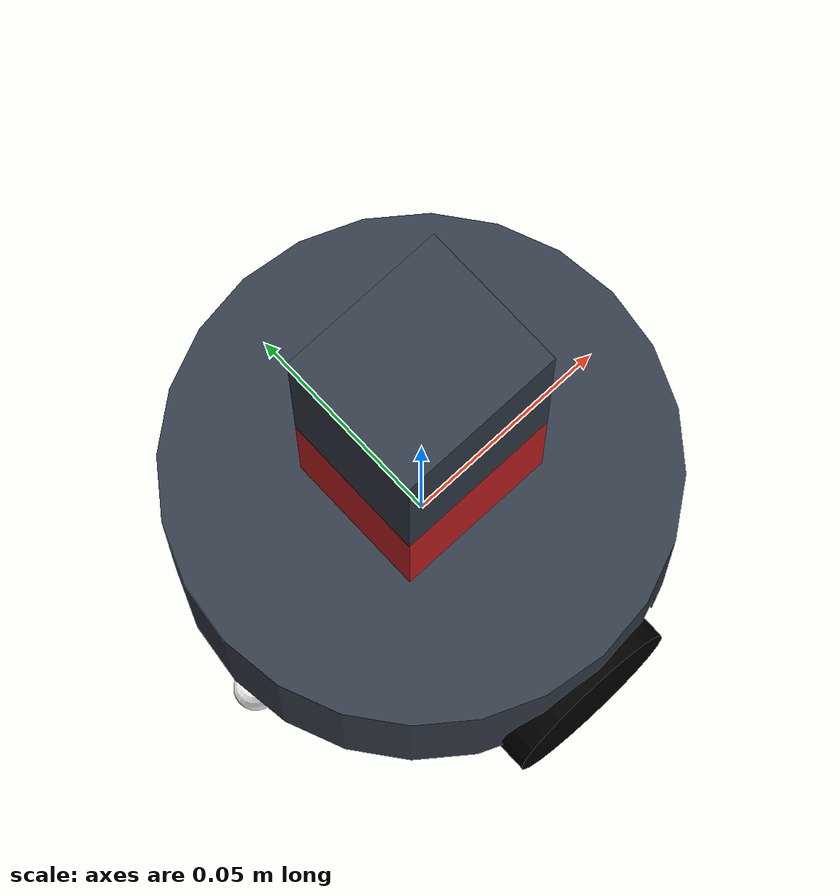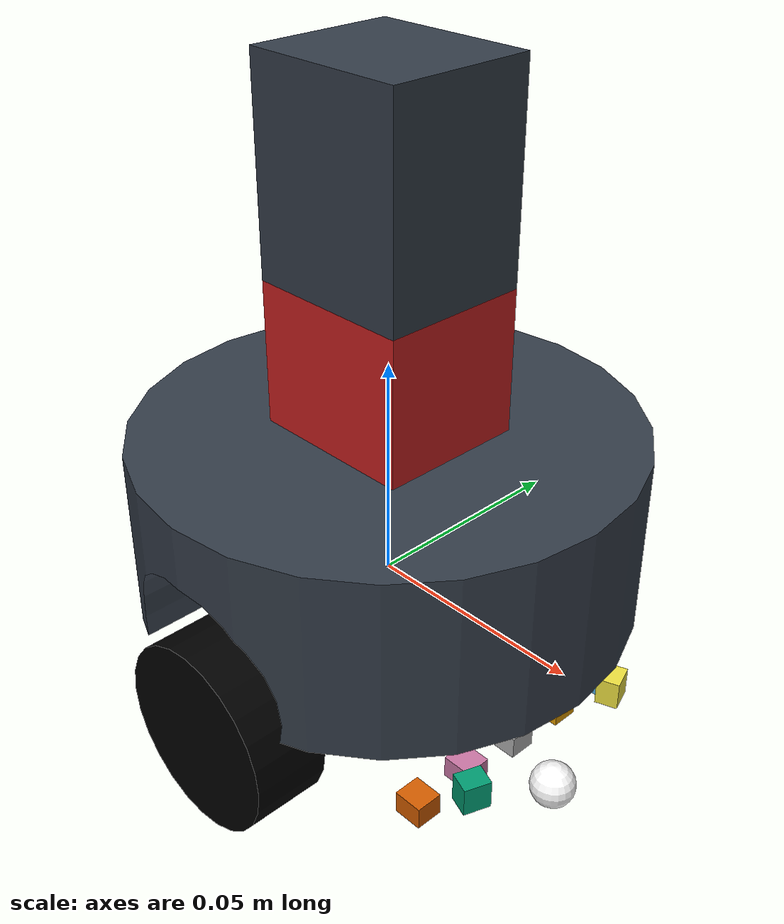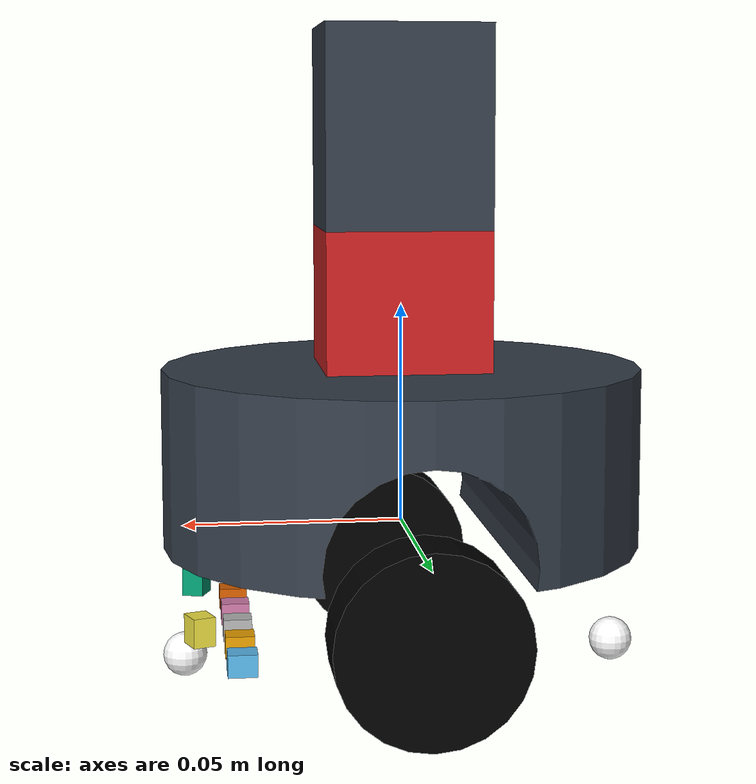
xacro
<?xml version="1.0" ?>

<robot name="alphabot2" xmlns:xacro="https://www.ros.org/wiki/xacro" >
  <xacro:include filename="$(find alphabot2_world)/robots/materials.xacro" />
  <xacro:include filename="$(find alphabot2_world)/robots/gazebo.xacro" />
  <xacro:include filename="$(find alphabot2_world)/robots/wheel_macro.xacro" />
  <xacro:include filename="$(find alphabot2_world)/robots/caster_macro.xacro" />

  <!-- chassis -->
  <link name="link_chassis">
    <!-- pose and inertial -->
    <pose>0 0 0 0 0 0</pose>
    <inertial>
      <mass value="0.145"/>
      <origin rpy="0 0 0" xyz="0 0 0"/>
      <inertia ixx="0.0395416666667" ixy="0" ixz="0" iyy="0.106208333333" iyz="0" izz="0.106208333333"/>
    </inertial>
    <!-- end of pose and inertial -->

    <!-- chassis collision and visual -->
    <collision name="collision_chassis">
      <geometry>
        <mesh filename="package://alphabot2_world/meshes/chassis.stl" />
      </geometry>
    </collision>
    <visual>
      <origin rpy="0 0 0" xyz="0 0 -0.0065"/>
      <geometry>
        <mesh filename="package://alphabot2_world/meshes/chassis.stl" />
      </geometry>
      <material name="blue"/>
    </visual>
    <!-- end of chassis collision and visual -->

    <!-- caster front -->
    <xacro:caster name="caster_front"  origin_xyz="0.05 0 -0.03"  />
    <!-- end of caster front -->

    <!-- caster back -->
    <xacro:caster name="caster_back"  origin_xyz="-0.05 0 -0.03"  />
    <!-- end of caster back -->
  </link>
  <!-- end of chassis -->

  <!-- right wheel -->
  <xacro:link_wheel name="link_right_wheel" />
  <!-- end of right wheel -->

  <!-- joint for right wheel -->
  <xacro:joint_wheel name="joint_right_wheel"  child="link_right_wheel"  origin_xyz="0 0.046 -0.016"  />
  <!-- end of joint for right wheel -->

  <!-- left wheel -->
  <xacro:link_wheel name="link_left_wheel" />
  <!-- end of left wheel -->

  <!-- joint for left wheel -->
  <xacro:joint_wheel name="joint_left_wheel"   child="link_left_wheel"   origin_xyz="0 -0.046 -0.016"  />
  <!-- end of joint for left wheel -->

  <!-- Lower Camera-->
  <link name="lower_camera_link">
    <inertial>
      <mass value="0.0225"/>
      <origin rpy="0 0 0" xyz="0 0 0"/>
      <inertia ixx="0.0000058388" ixy="0" ixz="0" iyy="0.0000063638" iyz="0" izz="0.0000046088"/>
    </inertial>
    <collision name="lower_camera_collision">
      <origin rpy="0 0 0" xyz="0 0 0" />
      <geometry>
        <box size="0.037 0.033 0.045"/>
      </geometry>
    </collision>
    <visual name="lower_camera_visual">
      <origin rpy="0 0 0" xyz="0 0 0"/>
      <geometry>
        <box size="0.037 0.033 0.045"/>
      </geometry>
      <material name="red"/>
    </visual>
  </link>

  <joint name="joint_lower_camera_link" type="continuous"><!--AQUI USAM REVOLUTE -->
    <origin rpy="0 0 0" xyz="0 0 0.045"/>
    <child link="lower_camera_link" />
    <parent link="link_chassis"/>
    <axis rpy="0 0 0" xyz="0 0 1"/>
    <limit effort="30" velocity="1" lower="-1.57" upper="1.57"/>
    <dynamics dampling="2" friction="2"/>
  </joint>

  <gazebo reference="lower_camera_link">
        <material>Gazebo/Yellow</material>
  </gazebo>

  <transmission name="pan_trans">
    <type>transmission_interface/SimpleTransmission</type>
    <joint name="joint_lower_camera_link">
      <hardwareInterface>PositionJointInterface</hardwareInterface>
    </joint>
    <actuator name="camera_pan_motor">
      <mechanicalReduction>1</mechanicalReduction>
    </actuator>
  </transmission>
  <!--End Lower Camera-->

  <!--Upper Camera-->
  <link name="upper_camera_link">
    <origin rpy="0 0 0" xyz="0 0 0"/>
    <inertial>
      <mass value="0.0225"/>
      <origin rpy="0 0 0" xyz="0 0 0 "/>
      <inertia ixx="0.0000058388" ixy="0" ixz="0" iyy="0.0000063638" iyz="0" izz="0.0000046088"/>
    </inertial>
    <collision name="upper_camera_collision">
      <origin rpy="0 0 0" xyz="0 0 0" />
      <geometry>
        <box size="0.037 0.033 0.045"/>
      </geometry>
    </collision>
    <visual name="upper_camera_visual">
      <origin rpy="0 0 0" xyz="0 0 0"/>
      <geometry>
        <box size="0.037 0.033 0.045"/>
      </geometry>
      <material name="blue"/>
    </visual>
  </link>

  <gazebo reference="upper_camera_link">
        <material>Gazebo/Yellow</material>
  </gazebo>

  <joint name="joint_upper_camera_link" type="revolute">
    <origin rpy="0 0 0" xyz="0 0 0.045"/>
    <child link="upper_camera_link" />
    <parent link="lower_camera_link"/>
    <axis rpy="0 0 0" xyz="0 1 0"/>
    <limit effort="30" velocity="1" lower="-1.57" upper="1.57"/>
    <dynamics dampling="2" friction="2"/>
  </joint>

  <transmission name="tilt_trans">
    <type>transmission_interface/SimpleTransmission</type>
    <joint name="joint_upper_camera_link">
      <hardwareInterface>PositionJointInterface</hardwareInterface>
    </joint>
    <actuator name="camera_tilt_motor">
      <mechanicalReduction>1</mechanicalReduction>
    </actuator>
  </transmission>
  <!--End Upper Camera-->

  <!--For all the transmission tags; links gazebo with ROS-->
  <gazebo>
    <plugin name="gazebo_ros_control" filename="libgazebo_ros_control.so">
      <robotNamespace>/alphabot2</robotNamespace>
    </plugin>
  </gazebo>

  <!-- camera -->
  <gazebo reference="upper_camera_link">
    <sensor name="alphabot2_camera" type="camera" >
      <visualize>1</visualize>
      <always_on>1</always_on>
      <update_rate>30.0</update_rate>
      <camera name="alphabot2_camera">
      <origin rpy="0 ${3.14/2} 0" xyz="0.015 0 0.045"/>
        <save enabled="true">
          <path>/tmp/</path>
        </save>
        <horizontal_fov>1.08504</horizontal_fov>
        <image>
          <width>160</width>
          <height>120</height>
          <format>R8G8B8</format>
        </image>
        <clip>
          <near>0.01</near>
          <far>1000</far>
        </clip>
        <noise>
          <type>gaussian</type>
          <!-- Noise is sampled independently per pixel on each frame.
               That pixel's noise value is added to each of its color
               channels, which at that point lie in the range [0,1]. -->
          <mean>0.0</mean>
          <stddev>0.007</stddev>
        </noise>
      </camera>
      <plugin name="camera_controller" filename="libgazebo_ros_camera.so">
        <alwaysOn>true</alwaysOn>
        <updateRate>30.0</updateRate>
        <cameraName>alphabot2/camera/</cameraName>
        <imageTopicName>image_raw</imageTopicName>
        <cameraInfoTopicName>camera_info</cameraInfoTopicName>
        <frameName>camera_link</frameName>
        <hackBaseline>0.07</hackBaseline>
        <distortionK1>0.0</distortionK1>
        <distortionK2>0.0</distortionK2>
        <distortionK3>0.0</distortionK3>
        <distortionT1>0.0</distortionT1>
        <distortionT2>0.0</distortionT2>
      </plugin>
    </sensor>
  </gazebo>

  <joint name="sensor1_joint" type="fixed">
    <axis xyz="0 1 0" />
    <origin xyz="0.038 -0.028 -0.0242" rpy="0 1.57 0"/>
    <parent link="link_chassis"/>
    <child link="sensor1_bottom"/>
  </joint>

  <link name="sensor1_bottom">
    <collision>
      <origin xyz="0 0 0" rpy="0 0 0"/>
      <geometry>
    	<box size="0.005 0.006 0.0065"/>
      </geometry>
    </collision>

    <visual>
      <origin xyz="0 0 0" rpy="0 0 0"/>
      <geometry>
    	<box size="0.005 0.006 0.0065"/>
      </geometry>
    </visual>

    <inertial>
      <mass value="1e-5" />
      <origin xyz="0 0 0" rpy="0 0 0"/>
      <inertia ixx="1e-6" ixy="0" ixz="0" iyy="1e-6" iyz="0" izz="1e-6" />
    </inertial>
  </link>

  <gazebo reference="sensor1_bottom">
    <sensor name="sensor1_bottom" type="camera" >
      <visualize>1</visualize>
      <always_on>1</always_on>
      <update_rate>40.0</update_rate>
      <camera name="sensor1_bottom">
      <origin rpy="0 0 0" xyz="0 0 0"/>
        <horizontal_fov>1.08504</horizontal_fov>
        <image>
          <width>10</width>
          <height>10</height>
          <format>R8G8B8</format>
        </image>
        <clip>
          <near>0.001</near>
          <far>5</far>
        </clip>
        <noise>
          <type>gaussian</type>
          <!-- Noise is sampled independently per pixel on each frame.
               That pixel's noise value is added to each of its color
               channels, which at that point lie in the range [0,1]. -->
          <mean>0.0</mean>
          <stddev>0.007</stddev>
        </noise>
      </camera>
      <plugin name="camera_controller" filename="libgazebo_ros_camera.so">
        <alwaysOn>true</alwaysOn>
        <updateRate>40.0</updateRate>
        <cameraName>sensor1_bottom/</cameraName>
        <imageTopicName>image_raw</imageTopicName>
        <cameraInfoTopicName>camera_info</cameraInfoTopicName>
        <frameName>sensor1_bottom</frameName>
        <hackBaseline>0.07</hackBaseline>
        <distortionK1>0.0</distortionK1>
        <distortionK2>0.0</distortionK2>
        <distortionK3>0.0</distortionK3>
        <distortionT1>0.0</distortionT1>
        <distortionT2>0.0</distortionT2>
      </plugin>
    </sensor>
  </gazebo>

  <joint name="sensor2_joint" type="fixed">
    <axis xyz="0 1 0" />
    <origin xyz="0.038  -0.014 -0.0242" rpy="0 1.57 0"/>
    <parent link="link_chassis"/>
    <child link="sensor2_bottom"/>
  </joint>

  <link name="sensor2_bottom">
    <collision>
      <origin xyz="0 0 0" rpy="0 0 0"/>
      <geometry>
    	<box size="0.005 0.006 0.0065"/>
      </geometry>
    </collision>

    <visual>
      <origin xyz="0 0 0" rpy="0 0 0"/>
      <geometry>
    	<box size="0.005 0.006 0.0065"/>
      </geometry>
    </visual>

    <inertial>
      <mass value="1e-5" />
      <origin xyz="0 0 0" rpy="0 0 0"/>
      <inertia ixx="1e-6" ixy="0" ixz="0" iyy="1e-6" iyz="0" izz="1e-6" />
    </inertial>
  </link>

  <gazebo reference="sensor2_bottom">
    <sensor name="sensor2_bottom" type="camera" >
      <visualize>1</visualize>
      <always_on>1</always_on>
      <update_rate>40.0</update_rate>
      <camera name="sensor2_bottom">
      <origin rpy="0 0 0" xyz="0 0 0"/>
        <horizontal_fov>1.08504</horizontal_fov>
        <image>
          <width>10</width>
          <height>10</height>
          <format>R8G8B8</format>
        </image>
        <clip>
          <near>0.001</near>
          <far>5</far>
        </clip>
        <noise>
          <type>gaussian</type>
          <!-- Noise is sampled independently per pixel on each frame.
               That pixel's noise value is added to each of its color
               channels, which at that point lie in the range [0,1]. -->
          <mean>0.0</mean>
          <stddev>0.007</stddev>
        </noise>
      </camera>
      <plugin name="camera_controller" filename="libgazebo_ros_camera.so">
        <alwaysOn>true</alwaysOn>
        <updateRate>40.0</updateRate>
        <cameraName>sensor2_bottom/</cameraName>
        <imageTopicName>image_raw</imageTopicName>
        <cameraInfoTopicName>camera_info</cameraInfoTopicName>
        <frameName>sensor2_bottom</frameName>
        <hackBaseline>0.07</hackBaseline>
        <distortionK1>0.0</distortionK1>
        <distortionK2>0.0</distortionK2>
        <distortionK3>0.0</distortionK3>
        <distortionT1>0.0</distortionT1>
        <distortionT2>0.0</distortionT2>
      </plugin>
    </sensor>
  </gazebo>

  <joint name="sensor3_joint" type="fixed">
    <axis xyz="0 1 0" />
    <origin xyz="0.038 0 -0.0242" rpy="0 1.57 0"/>
    <parent link="link_chassis"/>
    <child link="sensor3_bottom"/>
  </joint>

  <link name="sensor3_bottom">
    <collision>
      <origin xyz="0 0 0" rpy="0 0 0"/>
      <geometry>
    	<box size="0.005 0.006 0.0065"/>
      </geometry>
    </collision>

    <visual>
      <origin xyz="0 0 0" rpy="0 0 0"/>
      <geometry>
    	<box size="0.005 0.006 0.0065"/>
      </geometry>
    </visual>

    <inertial>
      <mass value="1e-5" />
      <origin xyz="0 0 0" rpy="0 0 0"/>
      <inertia ixx="1e-6" ixy="0" ixz="0" iyy="1e-6" iyz="0" izz="1e-6" />
    </inertial>
  </link>

  <gazebo reference="sensor3_bottom">
    <sensor name="sensor3_bottom" type="camera" >
      <visualize>1</visualize>
      <always_on>1</always_on>
      <update_rate>40.0</update_rate>
      <camera name="sensor3_bottom">
      <origin rpy="0 0 0" xyz="0 0 0"/>
        <horizontal_fov>1.08504</horizontal_fov>
        <image>
          <width>10</width>
          <height>10</height>
          <format>R8G8B8</format>
        </image>
        <clip>
          <near>0.001</near>
          <far>5</far>
        </clip>
        <noise>
          <type>gaussian</type>
          <!-- Noise is sampled independently per pixel on each frame.
               That pixel's noise value is added to each of its color
               channels, which at that point lie in the range [0,1]. -->
          <mean>0.0</mean>
          <stddev>0.007</stddev>
        </noise>
      </camera>
      <plugin name="camera_controller" filename="libgazebo_ros_camera.so">
        <alwaysOn>true</alwaysOn>
        <updateRate>40.0</updateRate>
        <cameraName>sensor3_bottom/</cameraName>
        <imageTopicName>image_raw</imageTopicName>
        <cameraInfoTopicName>camera_info</cameraInfoTopicName>
        <frameName>sensor3_bottom</frameName>
        <hackBaseline>0.07</hackBaseline>
        <distortionK1>0.0</distortionK1>
        <distortionK2>0.0</distortionK2>
        <distortionK3>0.0</distortionK3>
        <distortionT1>0.0</distortionT1>
        <distortionT2>0.0</distortionT2>
      </plugin>
    </sensor>
  </gazebo>

  <joint name="sensor4_joint" type="fixed">
    <axis xyz="0 1 0" />
    <origin xyz="0.038 0.014 -0.0242" rpy="0 1.57 0"/>
    <parent link="link_chassis"/>
    <child link="sensor4_bottom"/>
  </joint>

  <link name="sensor4_bottom">
    <collision>
      <origin xyz="0 0 0" rpy="0 0 0"/>
      <geometry>
    	<box size="0.005 0.006 0.0065"/>
      </geometry>
    </collision>

    <visual>
      <origin xyz="0 0 0" rpy="0 0 0"/>
      <geometry>
    	<box size="0.005 0.006 0.0065"/>
      </geometry>
    </visual>

    <inertial>
      <mass value="1e-5" />
      <origin xyz="0 0 0" rpy="0 0 0"/>
      <inertia ixx="1e-6" ixy="0" ixz="0" iyy="1e-6" iyz="0" izz="1e-6" />
    </inertial>
  </link>

  <gazebo reference="sensor4_bottom">
    <sensor name="sensor4_bottom" type="camera" >
      <visualize>1</visualize>
      <always_on>1</always_on>
      <update_rate>40.0</update_rate>
      <camera name="sensor4_bottom">
      <origin rpy="0 0 0" xyz="0 0 0"/>
        <horizontal_fov>1.08504</horizontal_fov>
        <image>
          <width>10</width>
          <height>10</height>
          <format>R8G8B8</format>
        </image>
        <clip>
          <near>0.001</near>
          <far>5</far>
        </clip>
        <noise>
          <type>gaussian</type>
          <!-- Noise is sampled independently per pixel on each frame.
               That pixel's noise value is added to each of its color
               channels, which at that point lie in the range [0,1]. -->
          <mean>0.0</mean>
          <stddev>0.007</stddev>
        </noise>
      </camera>
      <plugin name="camera_controller" filename="libgazebo_ros_camera.so">
        <alwaysOn>true</alwaysOn>
        <updateRate>40.0</updateRate>
        <cameraName>sensor4_bottom/</cameraName>
        <imageTopicName>image_raw</imageTopicName>
        <cameraInfoTopicName>camera_info</cameraInfoTopicName>
        <frameName>sensor4_bottom</frameName>
        <hackBaseline>0.07</hackBaseline>
        <distortionK1>0.0</distortionK1>
        <distortionK2>0.0</distortionK2>
        <distortionK3>0.0</distortionK3>
        <distortionT1>0.0</distortionT1>
        <distortionT2>0.0</distortionT2>
      </plugin>
    </sensor>
  </gazebo>

  <joint name="sensor5_joint" type="fixed">
    <axis xyz="0 1 0" />
    <origin xyz="0.038 0.028 -0.0242" rpy="0 1.57 0"/>
    <parent link="link_chassis"/>
    <child link="sensor5_bottom"/>
  </joint>

  <link name="sensor5_bottom">
    <collision>
      <origin xyz="0 0 0" rpy="0 0 0"/>
      <geometry>
    	<box size="0.005 0.006 0.0065"/>
      </geometry>
    </collision>

    <visual>
      <origin xyz="0 0 0" rpy="0 0 0"/>
      <geometry>
    	<box size="0.005 0.006 0.0065"/>
      </geometry>
    </visual>

    <inertial>
      <mass value="1e-5" />
      <origin xyz="0 0 0" rpy="0 0 0"/>
      <inertia ixx="1e-6" ixy="0" ixz="0" iyy="1e-6" iyz="0" izz="1e-6" />
    </inertial>
  </link>

  <gazebo reference="sensor5_bottom">
    <sensor name="sensor5_bottom" type="camera" >
      <visualize>1</visualize>
      <always_on>1</always_on>
      <update_rate>40.0</update_rate>
      <camera name="sensor5_bottom">
      <origin rpy="0 0 0" xyz="0 0 0"/>
        <horizontal_fov>1.08504</horizontal_fov>
        <image>
          <width>10</width>
          <height>10</height>
          <format>R8G8B8</format>
        </image>
        <clip>
          <near>0.001</near>
          <far>5</far>
        </clip>
        <noise>
          <type>gaussian</type>
          <!-- Noise is sampled independently per pixel on each frame.
               That pixel's noise value is added to each of its color
               channels, which at that point lie in the range [0,1]. -->
          <mean>0.0</mean>
          <stddev>0.007</stddev>
        </noise>
      </camera>
      <plugin name="camera_controller" filename="libgazebo_ros_camera.so">
        <alwaysOn>true</alwaysOn>
        <updateRate>40.0</updateRate>
        <cameraName>sensor5_bottom/</cameraName>
        <imageTopicName>image_raw</imageTopicName>
        <cameraInfoTopicName>camera_info</cameraInfoTopicName>
        <frameName>sensor5_bottom</frameName>
        <hackBaseline>0.07</hackBaseline>
        <distortionK1>0.0</distortionK1>
        <distortionK2>0.0</distortionK2>
        <distortionK3>0.0</distortionK3>
        <distortionT1>0.0</distortionT1>
        <distortionT2>0.0</distortionT2>
      </plugin>
    </sensor>
  </gazebo>

  <joint name="sensor1_top_joint" type="fixed">
    <axis xyz="0 1 0" />
    <origin xyz="0.0469 -0.022 -0.0183" rpy="0 0 -0.349066"/>
    <parent link="link_chassis"/>
    <child link="sensor1_top"/>
  </joint>

  <link name="sensor1_top">
    <visual>
      <origin xyz="0 0 0" rpy="0 0 0"/>
      <geometry>
    	<box size="0.005 0.006 0.0065"/>
      </geometry>
    </visual>

    <inertial>
      <mass value="1e-5" />
      <origin xyz="0 0 0" rpy="0 0 0"/>
      <inertia ixx="1e-6" ixy="0" ixz="0" iyy="1e-6" iyz="0" izz="1e-6" />
    </inertial>
  </link>

  <gazebo reference="sensor1_top">
    <sensor type="ray" name="head_sensor6">
      <pose>0 0 0 0 0 0</pose>
      <visualize>true</visualize>
      <update_rate>40</update_rate>
      <ray>
        <scan>
          <horizontal>
            <samples>100</samples>
            <resolution>1</resolution>
            <min_angle>-0.2617993878</min_angle>
            <max_angle>0.2617993878</max_angle>
          </horizontal>
        </scan>
        <range>
          <min>0.0010</min>
          <max>0.10</max>
          <resolution>0.01</resolution>
        </range>
        <noise>
          <type>gaussian</type>
          <mean>0.0</mean>
          <stddev>0.01</stddev>
        </noise>
      </ray>
      <plugin name="sensor1_top_controller" filename="libgazebo_ros_laser.so">
        <topicName>/alphabot2/laser/scan/sensor1_top</topicName>
        <frameName>sensor1_top</frameName>
      </plugin>
    </sensor>
  </gazebo>

  <joint name="sensor2_top_joint" type="fixed">
    <axis xyz="0 1 0" />
    <origin xyz="0.0469 0.022 -0.0183" rpy="0 0 0.349066"/>
    <parent link="link_chassis"/>
    <child link="sensor2_top"/>
  </joint>

  <link name="sensor2_top">
    <visual>
      <origin xyz="0 0 0" rpy="0 0 0"/>
      <geometry>
    	<box size="0.005 0.006 0.0065"/>
      </geometry>
    </visual>

    <inertial>
      <mass value="1e-5" />
      <origin xyz="0 0 0" rpy="0 0 0"/>
      <inertia ixx="1e-6" ixy="0" ixz="0" iyy="1e-6" iyz="0" izz="1e-6" />
    </inertial>
  </link>

  <gazebo reference="sensor2_top">
    <sensor type="ray" name="head_sensor7">
      <pose>0 0 0 0 0 0</pose>
      <visualize>true</visualize>
      <update_rate>40</update_rate>
      <ray>
        <scan>
          <horizontal>
            <samples>100</samples>
            <resolution>1</resolution>
            <min_angle>-0.2617993878</min_angle>
            <max_angle>0.2617993878</max_angle>
          </horizontal>
        </scan>
        <range>
          <min>0.0010</min>
          <max>0.10</max>
          <resolution>0.01</resolution>
        </range>
        <noise>
          <type>gaussian</type>
          <mean>0.0</mean>
          <stddev>0.01</stddev>
        </noise>
      </ray>
      <plugin name="sensor2_top_controller" filename="libgazebo_ros_laser.so">
        <topicName>/alphabot2/laser/scan/sensor2_top</topicName>
        <frameName>sensor2_top</frameName>
      </plugin>
    </sensor>
  </gazebo>

</robot>

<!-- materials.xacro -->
<robot name="alphabot2" xmlns:xacro="https://www.ros.org/wiki/xacro" >
  <material name="black">
    <color rgba="0.0 0.0 0.0 1.0"/>
  </material>
  <material name="blue">
    <color rgba="0.203125 0.23828125 0.28515625 1.0"/>
  </material>
  <material name="green">
    <color rgba="0.0 0.8 0.0 1.0"/>
  </material>
  <material name="grey">
    <color rgba="0.2 0.2 0.2 1.0"/>
  </material>
  <material name="orange">
    <color rgba="1.0 0.423529411765 0.0392156862745 1.0"/>
  </material>
  <material name="brown">
    <color rgba="0.870588235294 0.811764705882 0.764705882353 1.0"/>
  </material>
  <material name="red">
    <color rgba="0.80078125 0.12890625 0.1328125 1.0"/>
  </material>
  <material name="white">
    <color rgba="1.0 1.0 1.0 1.0"/>
  </material>
</robot>

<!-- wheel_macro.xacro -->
<robot xmlns:xacro="http://www.ros.org/wiki/xacro">
  <!-- link wheel -->
  <xacro:macro name="link_wheel" params="name">
    <link name="${name}">
      <inertial>
        <mass value="0.045"/>
        <origin rpy="0 1.5707 1.5707" xyz="0 0 0"/>
        <inertia ixx="0.00052666666" ixy="0" ixz="0" iyy="0.00052666666" iyz="0" izz="0.001"/>
      </inertial>

      <collision name="${name}_collision">
        <origin rpy="0 1.5707 1.5707" xyz="0 0 0" />
        <geometry>
          <cylinder length="0.017" radius="0.021"/>
        </geometry>
      </collision>

      <visual name="${name}_visual">
        <origin rpy="0 1.5707 1.5707" xyz="0 0 0"/>
        <geometry>
            <cylinder length="0.017" radius="0.021"/>
        </geometry>
        <material name="black"/>
      </visual>
    </link>
  </xacro:macro>
  <!-- end of link Wheel -->

  <!-- joint wheel -->
  <xacro:macro name="joint_wheel" params="name child origin_xyz">
    <joint name="${name}" type="continuous">
      <origin rpy="0 0 0" xyz="${origin_xyz}"/>
      <child link="${child}"/>
      <parent link="link_chassis"/>
      <axis rpy="0 0 0" xyz="0 1 0"/>
      <limit effort="10000" velocity="1000"/>
      <joint_properties damping="1.0" friction="1.0" />
    </joint>
  </xacro:macro>
  <!-- end of joint wheel -->
</robot>

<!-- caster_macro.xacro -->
<robot xmlns:xacro="http://www.ros.org/wiki/xacro">

  <!-- caster wheel -->
  <xacro:macro name="caster" params="name origin_xyz">
    <collision name="${name}_collision">
      <origin rpy="0 0 0" xyz="${origin_xyz}"/>
      <geometry>
        <sphere radius="0.005"/>
      </geometry>
      <surface>
        <friction>
          <ode>
            <mu>0</mu>
            <mu2>0</mu2>
            <slip1>1.0</slip1>
            <slip2>1.0</slip2>
          </ode>
        </friction>
      </surface>
    </collision>

    <visual name="${name}_visual">
      <origin rpy="0 0 0" xyz="${origin_xyz}"/>
      <geometry>
        <sphere radius="0.005"/>
      </geometry>
      <material name="white"/>
    </visual>
  </xacro:macro>
  <!-- end of caster wheel -->
</robot>
